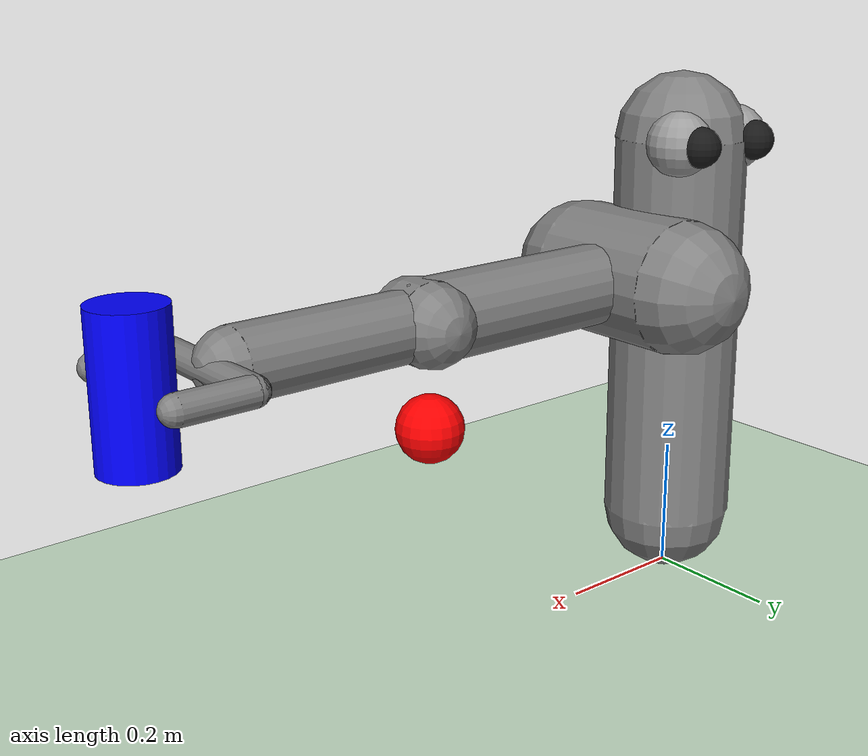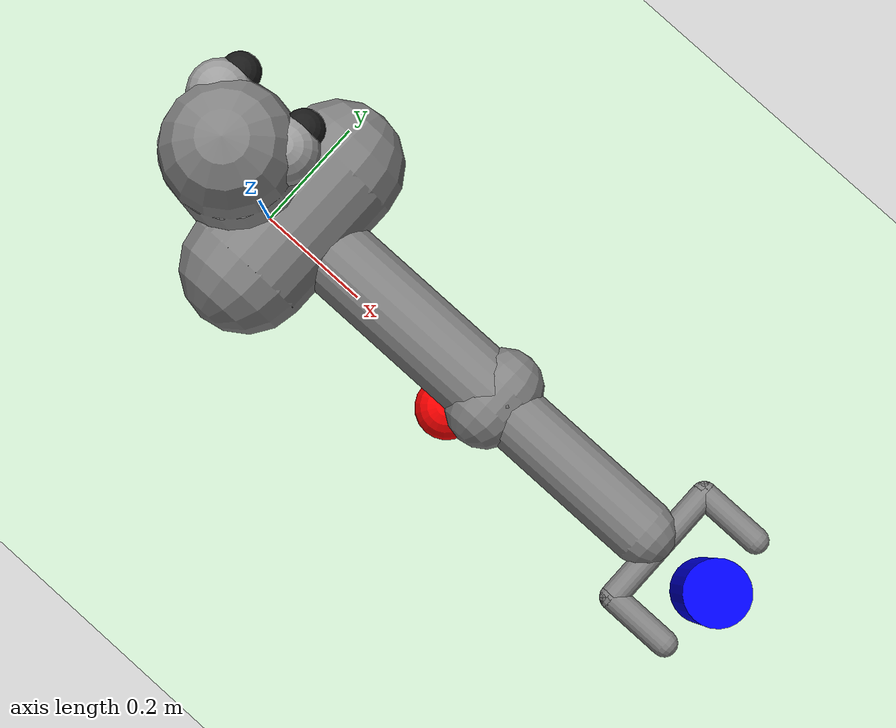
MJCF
<mujoco model="arm3d">
  <compiler inertiafromgeom="true" angle="radian" coordinate="local"/>
  <option timestep="0.01" gravity="0 0 0" iterations="20" integrator="Euler" />

  <default>
    <joint armature='0.04' damping="1" limited="true"/>
    <geom friction=".8 .1 .1" density="300" margin="0.002" condim="1" contype="0" conaffinity="0"/>

  </default>
  <asset>
    <texture builtin="gradient" height="100" rgb1="1 1 1" rgb2="0 0 0" type="skybox" width="100"/>
    <texture builtin="flat" height="1278" mark="cross" markrgb="1 1 1" name="texgeom" random="0.01" rgb1="0.8 0.6 0.4" rgb2="0.8 0.6 0.4" type="cube" width="127"/>
    <texture builtin="checker" height="100" name="texplane" rgb1="0 0 0" rgb2="0.8 0.8 0.8" type="2d" width="100"/>
    <material name="MatPlane" reflectance="0.5" shininess="1" specular="1" texrepeat="60 60" texture="texplane"/>
    <material name="geom" texture="texgeom" texuniform="true"/>

  </asset>

  <worldbody>

    <light cutoff="100" diffuse="1 1 1" dir="-0 0 -1.3" directional="true" exponent="1" pos="0 0 1.3" specular=".1 .1 .1"/>
    <geom conaffinity="1" condim="3" material="MatPlane" name="floor" pos="0 0 0" rgba="0.8 0.9 0.8 1" size="5 5 5" type="plane"/>

    <body name="r_shoulder_pan_link" pos="0 0 0.5">
      <geom name="e1" type="sphere" rgba="0.6 0.6 0.6 1" pos="-0.06 0.05 0.2" size="0.05" />
      <geom name="e2" type="sphere" rgba="0.6 0.6 0.6 1" pos=" 0.06 0.05 0.2" size="0.05" />
      <geom name="e1p" type="sphere" rgba="0.1 0.1 0.1 1" pos="-0.06 0.09 0.2" size="0.03" />
      <geom name="e2p" type="sphere" rgba="0.1 0.1 0.1 1" pos=" 0.06 0.09 0.2" size="0.03" />
      <geom name="sp" type="capsule" fromto="0 0 -0.4 0 0 0.2" size="0.1" />
      <joint name="r_shoulder_pan_joint" type="hinge" pos="0 0 0" axis="0 0 1" range="-2.2854 1.714602" damping="1.0" />

      <body name="r_shoulder_lift_link" pos="0.1 0 0">
        <geom name="sl" type="capsule" fromto="0 -0.1 0 0 0.1 0" size="0.1" />
        <joint name="r_shoulder_lift_joint" type="hinge" pos="0 0 0" axis="0 1 0" range="-0.5236 1.3963" damping="1.0" />

        <body name="r_upper_arm_roll_link" pos="0 0 0">
          <geom name="uar" type="capsule" fromto="-0.1 0 0 0.1 0 0" size="0.02" />
          <joint name="r_upper_arm_roll_joint" type="hinge" pos="0 0 0" axis="1 0 0" range="-1.5 1.7" damping="0.1" />

          <body name="r_upper_arm_link" pos="0 0 0">
            <geom name="ua" type="capsule" fromto="0 0 0 0.4 0 0" size="0.06" />

            <body name="r_elbow_flex_link" pos="0.4 0 0">
              <geom name="ef" type="capsule" fromto="0 -0.02 0 0.0 0.02 0" size="0.06" />
              <joint name="r_elbow_flex_joint" type="hinge" pos="0 0 0" axis="0 1 0" range="-2.3213 0" damping="0.1" />

              <body name="r_forearm_roll_link" pos="0 0 0">
                <geom name="fr" type="capsule" fromto="-0.1 0 0 0.1 0 0" size="0.02" />
                <joint name="r_forearm_roll_joint" type="hinge" limited="true" pos="0 0 0" axis="1 0 0" damping=".1" range="-1.5 1.5"/>

                <body name="r_forearm_link" pos="0 0 0">
                  <geom name="fa" type="capsule" fromto="0 0 0 0.291 0 0" size="0.05" />

                  <body name="r_wrist_flex_link" pos="0.321 0 0">
                    <geom name="wf" type="capsule" fromto="0 -0.02 0 0 0.02 0" size="0.01" />
                    <joint name="r_wrist_flex_joint" type="hinge" pos="0 0 0" axis="0 1 0" range="-1.094 0" damping=".1" />

                    <body name="r_wrist_roll_link" pos="0 0 0">
                      <joint name="r_wrist_roll_joint" type="hinge" pos="0 0 0" limited="true" axis="1 0 0" damping="0.1" range="-1.5 1.5"/>
                      <body name="tips_arm" pos="0 0 0">
                        <geom name="tip_arml" type="sphere" pos="0.1 -0.1 0." size="0.01" />
                        <geom name="tip_armr" type="sphere" pos="0.1 0.1 0." size="0.01" />

                          <body name="object" pos="0.1  0   0 ">
                          <geom rgba="0 0 1 1" type="cylinder" size="0.05  0.1 1" density='0.001' contype="3" conaffinity="0"/>

                        </body>
                      </body>
                      <geom type="capsule" fromto="0 -0.1 0. 0.0 +0.1 0" size="0.02" contype="1" conaffinity="1" />
                      <geom type="capsule" fromto="0 -0.1 0. 0.1 -0.1 0" size="0.02" contype="1" conaffinity="1" />
                      <geom type="capsule" fromto="0 +0.1 0. 0.1 +0.1 0." size="0.02" contype="1" conaffinity="1" />
                    </body>
                  </body>
                </body>
              </body>
            </body>
          </body>
        </body>
      </body>
    </body>

    <body name="goal" pos="0.45 -0.05 0.3230">
      <geom rgba="1 0 0 1" type="sphere" size="0.05 0.05 0.05" density='0.00001' contype="0" conaffinity="0" />
    <joint armature="0" axis="1 0 0" damping="0" limited="false" name="goal_x" pos="0 0 0"  ref=".1" stiffness="0" type="slide" />
    <joint armature="0" axis="0 1 0" damping="0" limited="false" name="goal_y" pos="0 0 0"  ref="-.1" stiffness="0"  type="slide"/>
    <joint armature="0" axis="0 0 1" damping="0" limited="false"  name="goal_z" pos="0 0 0"  ref="-.1" stiffness="0" type="slide"/>
    </body>
  </worldbody>

  <actuator>
    <motor joint="r_shoulder_pan_joint" ctrlrange="-2.0 2.0" ctrllimited="true" />
    <motor joint="r_shoulder_lift_joint" ctrlrange="-2.0 2.0" ctrllimited="true" />
    <motor joint="r_upper_arm_roll_joint" ctrlrange="-2.0 2.0" ctrllimited="true" />
    <motor joint="r_elbow_flex_joint" ctrlrange="-2.0 2.0" ctrllimited="true" />
    <motor joint="r_forearm_roll_joint" ctrlrange="-2.0 2.0" ctrllimited="true" />
    <motor joint="r_wrist_flex_joint" ctrlrange="-2.0 2.0" ctrllimited="true" />
    <motor joint="r_wrist_roll_joint" ctrlrange="-2.0 2.0" ctrllimited="true"/>
  </actuator>
</mujoco>
